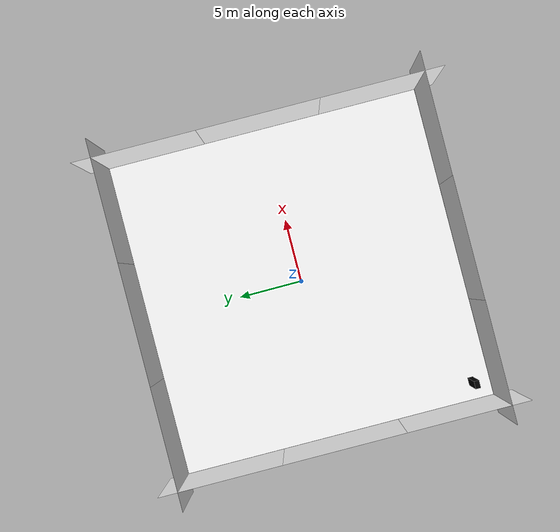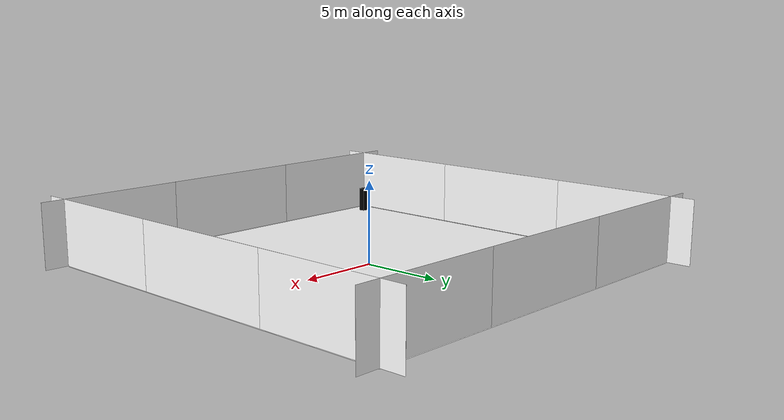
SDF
<sdf version="1.6">
 <world name="large_demo">
  <gravity>0 0 0</gravity>
  <physics name="1ms" type="ignored">
   <max_step_size>0.001</max_step_size>
   <real_time_factor>1.0</real_time_factor>
  </physics>
  <plugin filename="gz-sim-physics-system" name="gz::sim::systems::Physics"/>
  <plugin filename="gz-sim-sensors-system" name="gz::sim::systems::Sensors">
   <render_engine>ogre2</render_engine>
  </plugin>
  <plugin filename="gz-sim-scene-broadcaster-system" name="gz::sim::systems::SceneBroadcaster"/>
  <plugin filename="gz-sim-user-commands-system" name="gz::sim::systems::UserCommands"/>
  <light name="sun" type="directional">
   <pose>0 0 100 0 0 0</pose>
   <diffuse>0.8 0.8 0.8 1</diffuse>
   <specular>0.2 0.2 0.2 1</specular>
   <direction>-0.5 0.1 -0.9</direction>
   <intensity>5</intensity>
  </light>
  <include><uri>model://forest_plane</uri><name>forest_plane</name></include>
  <include>
   <uri>model://forest_wall</uri>
   <name>forest_wall1</name>
   <pose>12.5 0 2 1.570796 0 -1.570796</pose>
  </include>
  <include>
   <uri>model://forest_wall</uri>
   <name>forest_wall2</name>
   <pose>12.5 -9.32 2 1.570796 0 -1.570796</pose>
  </include>
  <include>
   <uri>model://forest_wall</uri>
   <name>forest_wall3</name>
   <pose>12.5 9.32 2 1.570796 0 -1.570796</pose>
  </include>
  <include>
   <uri>model://forest_wall</uri>
   <name>forest_wall4</name>
   <pose>-12.5 0 2 1.570796 0 1.570796</pose>
  </include>
  <include>
   <uri>model://forest_wall</uri>
   <name>forest_wall5</name>
   <pose>-12.5 -9.32 2 1.570796 0 1.570796</pose>
  </include>
  <include>
   <uri>model://forest_wall</uri>
   <name>forest_wall6</name>
   <pose>-12.5 9.32 2 1.570796 0 1.570796</pose>
  </include>
  <include>
   <uri>model://forest_wall</uri>
   <name>forest_wall7</name>
   <pose>0 -12.5 2 1.570796 0 3.14</pose>
  </include>
  <include>
   <uri>model://forest_wall</uri>
   <name>forest_wall8</name>
   <pose>-9.32 -12.5 2 1.570796 0 3.14</pose>
  </include>
  <include>
   <uri>model://forest_wall</uri>
   <name>forest_wall9</name>
   <pose>9.32 -12.5 2 1.570796 0 3.14</pose>
  </include>
  <include><uri>model://forest_wall</uri><name>forest_wall10</name><pose>0 12.5 2 1.570796 0 0</pose></include>
  <include>
   <uri>model://forest_wall</uri>
   <name>forest_wall11</name>
   <pose>-9.32 12.5 2 1.570796 0 0</pose>
  </include>
  <include>
   <uri>model://forest_wall</uri>
   <name>forest_wall12</name>
   <pose>9.32 12.5 2 1.570796 0 0</pose>
  </include>
  <model name="person1_heat_overlay">
   <static>true</static>
   <pose>-11 -11 0 0 0 0</pose>
   <link name="heat_link">
    <visual name="heat_box">
     <pose>0 0 0.9 0 0 0</pose>
     <geometry><box><size>0.6 0.4 1.6</size></box></geometry>
     <material>
      <ambient>0 0 0 0</ambient>
      <diffuse>0 0 0 0</diffuse>
      <specular>0 0 0 0</specular>
      <emissive>0 0 0 0</emissive>
     </material>
     <plugin filename="gz-sim-thermal-system" name="gz::sim::systems::Thermal">
      <temperature>330</temperature>
     </plugin>
    </visual>
   </link>
  </model>
 </world>
</sdf>

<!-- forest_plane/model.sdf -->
<sdf version="1.7">
<model name="grass_plane">
    <static>true</static>
    <link name="link">
        <collision name="collision">
            <geometry>
            <box>
                <normal>0 0 1</normal>
                <size>25 25 0.01</size>
            </box>
            </geometry>
        </collision>
        <visual name="visual">
            <cast_shadows>false</cast_shadows>
            <geometry>
            <plane>
                <normal>0 0 1</normal>
                <size>25 25</size>
            </plane>
            </geometry>
            <material>
                <ambient>1.0 1.0 1.0 1</ambient>
                <diffuse>1.0 1.0 1.0 1</diffuse>
                <specular>1.0 1.0 1.0 1</specular>
                <pbr>
                    <metal>
                    <albedo_map>
                        model://forest_plane/materials/textures/forest_overhead.png
                    </albedo_map>
                    </metal>
                </pbr>
            </material>
        </visual>
    </link>
</model>
</sdf>

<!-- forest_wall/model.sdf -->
<sdf version="1.7">
<model name="forest_wall">
    <static>true</static>
    <link name="link">
        <collision name="collision">
            <geometry>
            <plane>
                <normal>0 0 1</normal>
                <size>9.32 4</size>
            </plane>
            </geometry>
        </collision>
        <visual name="visual">
            <cast_shadows>false</cast_shadows>
            <geometry>
            <plane>
                <normal>0 0 1</normal>
                <size>9.32 4</size>
            </plane>
            </geometry>
            <material>
                <ambient>1.0 1.0 1.0 1</ambient>
                <diffuse>1.0 1.0 1.0 1</diffuse>
                <specular>1.0 1.0 1.0 1</specular>
                <pbr>
                    <metal>
                    <albedo_map>
                        model://forest_wall/materials/textures/forest_wall_transparent.png
                    </albedo_map>
                    </metal>
                </pbr>
            </material>
        </visual>
    </link>
</model>
</sdf>
